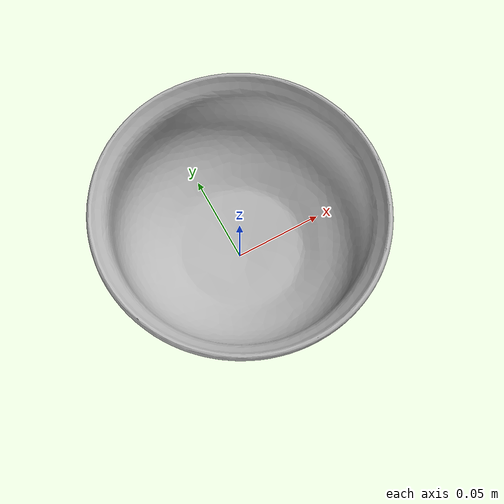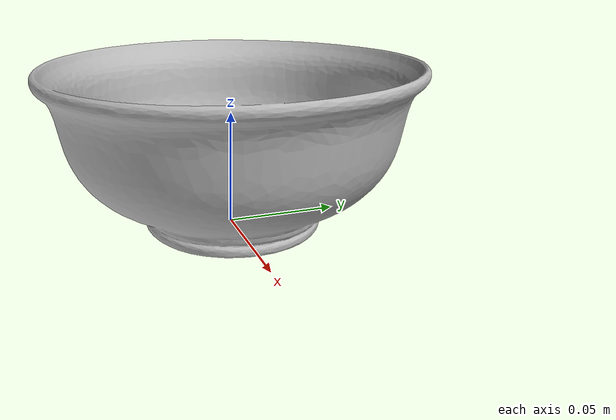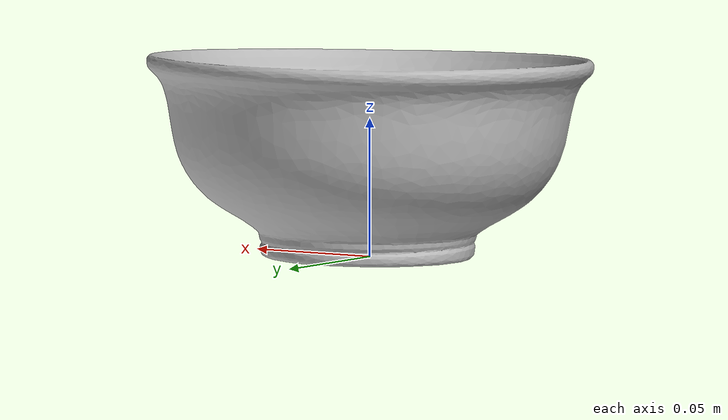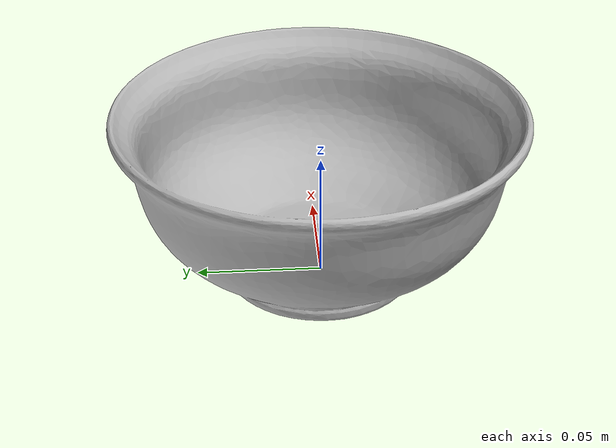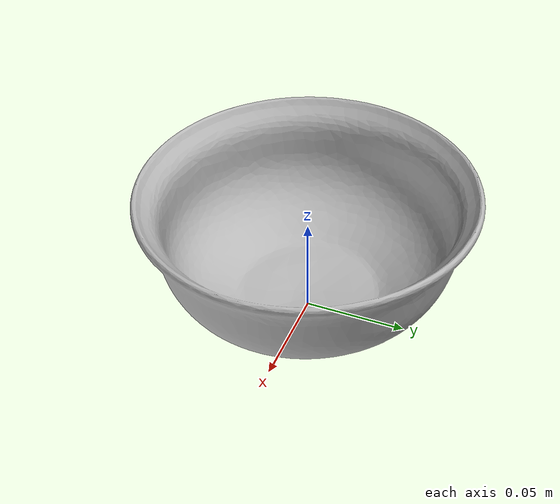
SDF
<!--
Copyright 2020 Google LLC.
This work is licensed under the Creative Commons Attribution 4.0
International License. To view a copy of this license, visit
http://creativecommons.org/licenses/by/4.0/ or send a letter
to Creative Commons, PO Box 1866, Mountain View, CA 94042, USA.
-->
<?xml version="1.0" ?>
<sdf version="1.6">
  <model name="Dish">
    <link name="link_0">

      <inertial>
        <pose>0 0 0 0 0 0</pose>
        <mass>0.3</mass>
        <inertia>
          <ixx>0.0005</ixx>
          <ixy>0</ixy>
          <ixz>0</ixz>
          <iyy>0.0005</iyy>
          <iyz>0</iyz>
          <izz>0.001</izz> </inertia>
      </inertial>

      <visual name="visual">
        <geometry>
          <mesh>
            <uri>meshes/model.obj</uri>
            <scale>0.5 0.5 0.5</scale> </mesh>
        </geometry>
      </visual>

      <collision name="collision_0">
        <geometry>
          <mesh>
            <uri>meshes/model.obj</uri>
            <scale>0.5 0.5 0.5</scale> </mesh>
        </geometry>

        <surface>
          <friction>
            <ode>
              <mu>5.0</mu>
              <mu2>5.0</mu2>
            </ode>
          </friction>
          <contact>
            <ode>
              <kp>100000.0</kp>
              <kd>100.0</kd>
              <min_depth>0.001</min_depth>
            </ode>
          </contact>
        </surface>
      </collision>

    </link>
  </model>
</sdf>
